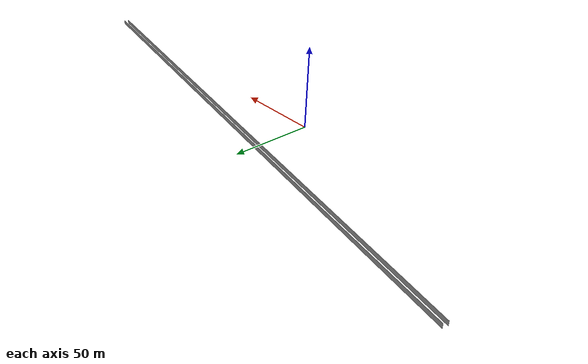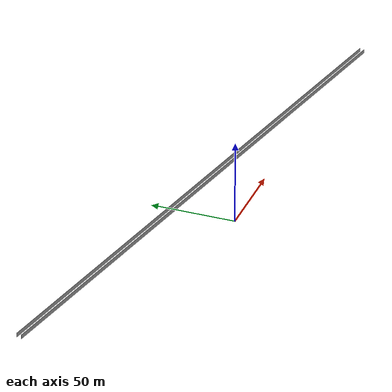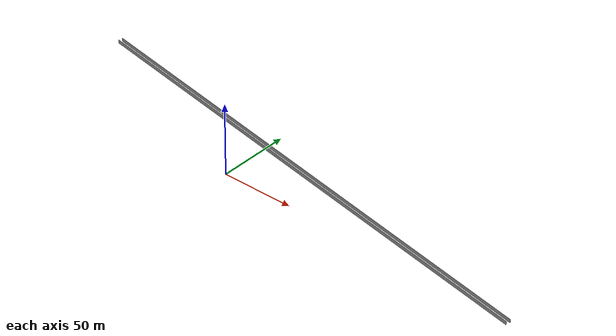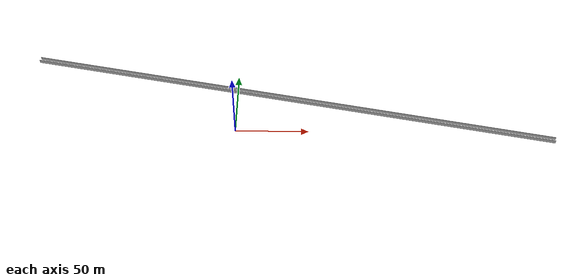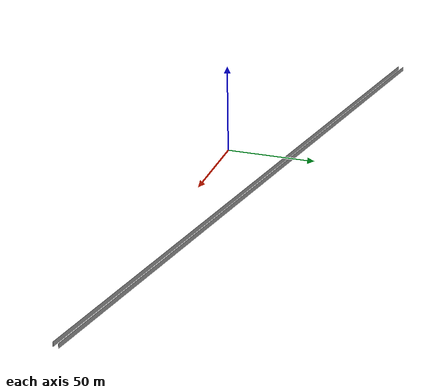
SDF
<?xml version="1.0" ?>
<sdf version="1.6">
  <model name="sps_0606">
    <pose frame="">0 0 0 0 -0 0</pose>
    <static>1</static>
    <self_collide>0</self_collide>
    <allow_auto_disable>0</allow_auto_disable>
    <link name="Wall2668">
      <kinematic>0</kinematic>
      <gravity>1</gravity>
      <self_collide>0</self_collide>
      <collision name="collision">
        <geometry>
          <box>
            <size>372.322 0.15 2.5</size>
          </box>
        </geometry>
        <pose frame="">0 0 0 0 -0 0</pose>
      </collision>
      <visual name="visual">
        <geometry>
          <box>
            <size>372.322 0.15 2.5</size>
          </box>
        </geometry>
        <pose frame="">0 0 0 0 -0 0</pose>
        <cast_shadows>1</cast_shadows>
        <transparency>0.0</transparency>
      </visual>
      <pose frame="">34.8515 28.3938 1.25 0 0 -0.192774</pose>
    </link>
    <link name="Wall3511">
      <kinematic>0</kinematic>
      <gravity>1</gravity>
      <self_collide>0</self_collide>
      <collision name="collision">
        <geometry>
          <box>
            <size>372.316 0.15 2.5</size>
          </box>
        </geometry>
        <pose frame="">0 0 0 0 -0 0</pose>
      </collision>
      <visual name="visual">
        <geometry>
          <box>
            <size>372.316 0.15 2.5</size>
          </box>
        </geometry>
        <pose frame="">0 0 0 0 -0 0</pose>
        <cast_shadows>1</cast_shadows>
        <transparency>0.0</transparency>
      </visual>
      <pose frame="">35.4293 31.3377 1.25 0 0 -0.192773</pose>
    </link>
  </model>
</sdf>
